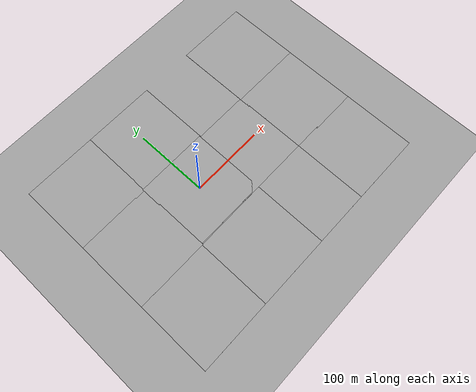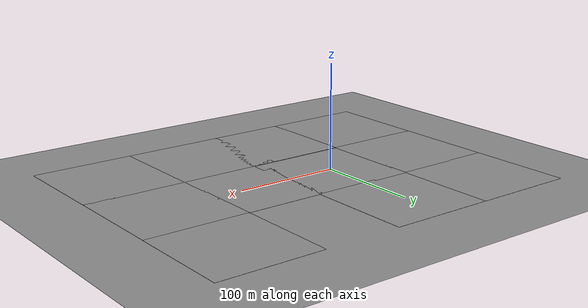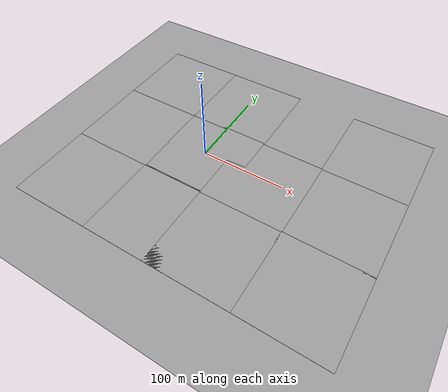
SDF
<sdf version="1.7">
 <world name="default">
  <scene>
   <grid>0</grid>
   <origin_visual>0</origin_visual>
   <ambient>0.85 0.85 0.85 1</ambient>
   <sky><clouds><speed>12</speed></clouds></sky>
   <background>0.35 0.35 0.35 1</background>
   <shadows>1</shadows>
  </scene>
  <physics name="default_physics" default="0" type="ode">
   <max_step_size>0.005</max_step_size>
   <real_time_factor>1</real_time_factor>
   <real_time_update_rate>200</real_time_update_rate>
  </physics>
  <light name="sun" type="directional">
   <pose>0 0 1000 0 -0 0</pose>
   <diffuse>0.8 0.8 0.8 1</diffuse>
   <specular>0.5 0.5 0.5 1</specular>
   <attenuation>
    <range>1000</range>
    <constant>0.9</constant>
    <linear>0.01</linear>
    <quadratic>0.001</quadratic>
   </attenuation>
   <direction>-0.5 0.1 -0.4</direction>
   <spot><inner_angle>0</inner_angle><outer_angle>0</outer_angle><falloff>0</falloff></spot>
  </light>
  <model name="ground_plane">
   <static>1</static>
   <link name="link">
    <collision name="collision">
     <geometry><plane><normal>0 0 1</normal><size>100 100</size></plane></geometry>
     <surface><friction><ode><mu>100</mu><mu2>50</mu2></ode></friction></surface>
    </collision>
   </link>
  </model>
  <model name="asphalt_plane_74">
   <static>1</static>
   <pose>61.581 -16.664 0 0 -0 0</pose>
   <link name="link">
    <visual name="visual">
     <geometry><box><size>20 20 0.05</size></box></geometry>
     <material>
      <script>
       <uri>model://asphalt_plane/materials/scripts</uri>
       <uri>model://asphalt_plane/materials/textures</uri>
       <name>vrc/asphalt</name>
      </script>
     </material>
    </visual>
   </link>
  </model>
  <gravity>0 0 -9.8</gravity>
  <magnetic_field>6e-06 2.3e-05 -4.2e-05</magnetic_field>
  <atmosphere type="adiabatic"/>
  <spherical_coordinates>
   <surface_model>EARTH_WGS84</surface_model>
   <latitude_deg>0</latitude_deg>
   <longitude_deg>0</longitude_deg>
   <elevation>0</elevation>
   <heading_deg>0</heading_deg>
  </spherical_coordinates>
  <model name="ground_plane_0">
   <static>1</static>
   <link name="link">
    <collision name="collision">
     <geometry><plane><normal>0 0 1</normal><size>100 100</size></plane></geometry>
     <surface>
      <contact><collide_bitmask>65535</collide_bitmask></contact>
      <friction><ode><mu>100</mu><mu2>50</mu2></ode></friction>
     </surface>
    </collision>
    <visual name="visual">
     <cast_shadows>0</cast_shadows>
     <geometry><plane><normal>0 0 1</normal><size>100 100</size></plane></geometry>
     <material>
      <script><uri>file://media/materials/scripts/gazebo.material</uri><name>Gazebo/Grey</name></script>
     </material>
    </visual>
   </link>
   <pose>76.7051 97.662 0 0 -0 0</pose>
  </model>
  <model name="ground_plane_1">
   <static>1</static>
   <link name="link">
    <collision name="collision">
     <geometry><plane><normal>0 0 1</normal><size>100 100</size></plane></geometry>
     <surface>
      <contact><collide_bitmask>65535</collide_bitmask></contact>
      <friction><ode><mu>100</mu><mu2>50</mu2></ode></friction>
     </surface>
    </collision>
    <visual name="visual">
     <cast_shadows>0</cast_shadows>
     <geometry><plane><normal>0 0 1</normal><size>100 100</size></plane></geometry>
     <material>
      <script><uri>file://media/materials/scripts/gazebo.material</uri><name>Gazebo/Grey</name></script>
     </material>
    </visual>
   </link>
   <pose>1.47928 97.673 0 0 -0 0</pose>
  </model>
  <model name="ground_plane_2">
   <static>1</static>
   <link name="link">
    <collision name="collision">
     <geometry><plane><normal>0 0 1</normal><size>100 100</size></plane></geometry>
     <surface>
      <contact><collide_bitmask>65535</collide_bitmask></contact>
      <friction><ode><mu>100</mu><mu2>50</mu2></ode></friction>
     </surface>
    </collision>
    <visual name="visual">
     <cast_shadows>0</cast_shadows>
     <geometry><plane><normal>0 0 1</normal><size>100 100</size></plane></geometry>
     <material>
      <script><uri>file://media/materials/scripts/gazebo.material</uri><name>Gazebo/Grey</name></script>
     </material>
    </visual>
   </link>
   <pose>76.687 -1.43461 0 0 -0 0</pose>
  </model>
  <model name="ground_plane_3">
   <static>1</static>
   <link name="link">
    <collision name="collision">
     <geometry><plane><normal>0 0 1</normal><size>100 100</size></plane></geometry>
     <surface>
      <contact><collide_bitmask>65535</collide_bitmask></contact>
      <friction><ode><mu>100</mu><mu2>50</mu2></ode></friction>
     </surface>
    </collision>
    <visual name="visual">
     <cast_shadows>0</cast_shadows>
     <geometry><plane><normal>0 0 1</normal><size>100 100</size></plane></geometry>
     <material>
      <script><uri>file://media/materials/scripts/gazebo.material</uri><name>Gazebo/Grey</name></script>
     </material>
    </visual>
   </link>
   <pose>0.752401 0.14058 0 0 -0 0</pose>
  </model>
  <model name="ground_plane_4">
   <static>1</static>
   <link name="link">
    <collision name="collision">
     <geometry><plane><normal>0 0 1</normal><size>100 100</size></plane></geometry>
     <surface>
      <contact><collide_bitmask>65535</collide_bitmask></contact>
      <friction><ode><mu>100</mu><mu2>50</mu2></ode></friction>
     </surface>
    </collision>
    <visual name="visual">
     <cast_shadows>0</cast_shadows>
     <geometry><plane><normal>0 0 1</normal><size>100 100</size></plane></geometry>
     <material>
      <script><uri>file://media/materials/scripts/gazebo.material</uri><name>Gazebo/Grey</name></script>
     </material>
    </visual>
   </link>
   <pose>76.7622 -100.816 0 0 -0 0</pose>
  </model>
  <model name="ground_plane_5">
   <static>1</static>
   <link name="link">
    <collision name="collision">
     <geometry><plane><normal>0 0 1</normal><size>100 100</size></plane></geometry>
     <surface>
      <contact><collide_bitmask>65535</collide_bitmask></contact>
      <friction><ode><mu>100</mu><mu2>50</mu2></ode></friction>
     </surface>
    </collision>
    <visual name="visual">
     <cast_shadows>0</cast_shadows>
     <geometry><plane><normal>0 0 1</normal><size>100 100</size></plane></geometry>
     <material>
      <script><uri>file://media/materials/scripts/gazebo.material</uri><name>Gazebo/Grey</name></script>
     </material>
    </visual>
   </link>
   <pose>0.776733 -100.921 0 0 -0 0</pose>
  </model>
  <model name="ground_plane_6">
   <static>1</static>
   <link name="link">
    <collision name="collision">
     <geometry><plane><normal>0 0 1</normal><size>100 100</size></plane></geometry>
     <surface>
      <contact><collide_bitmask>65535</collide_bitmask></contact>
      <friction><ode><mu>100</mu><mu2>50</mu2></ode></friction>
     </surface>
    </collision>
    <visual name="visual">
     <cast_shadows>0</cast_shadows>
     <geometry><plane><normal>0 0 1</normal><size>100 100</size></plane></geometry>
     <material>
      <script><uri>file://media/materials/scripts/gazebo.material</uri><name>Gazebo/Grey</name></script>
     </material>
    </visual>
   </link>
   <pose>175.67 -100.799 0 0 -0 0</pose>
  </model>
  <model name="ground_plane_7">
   <static>1</static>
   <link name="link">
    <collision name="collision">
     <geometry><plane><normal>0 0 1</normal><size>100 100</size></plane></geometry>
     <surface>
      <contact><collide_bitmask>65535</collide_bitmask></contact>
      <friction><ode><mu>100</mu><mu2>50</mu2></ode></friction>
     </surface>
    </collision>
    <visual name="visual">
     <cast_shadows>0</cast_shadows>
     <geometry><plane><normal>0 0 1</normal><size>100 100</size></plane></geometry>
     <material>
      <script><uri>file://media/materials/scripts/gazebo.material</uri><name>Gazebo/Grey</name></script>
     </material>
    </visual>
   </link>
   <pose>175.574 -2.13488 0 0 -0 0</pose>
  </model>
  <model name="ground_plane_8">
   <static>1</static>
   <link name="link">
    <collision name="collision">
     <geometry><plane><normal>0 0 1</normal><size>100 100</size></plane></geometry>
     <surface>
      <contact><collide_bitmask>65535</collide_bitmask></contact>
      <friction><ode><mu>100</mu><mu2>50</mu2></ode></friction>
     </surface>
    </collision>
    <visual name="visual">
     <cast_shadows>0</cast_shadows>
     <geometry><plane><normal>0 0 1</normal><size>100 100</size></plane></geometry>
     <material>
      <script><uri>file://media/materials/scripts/gazebo.material</uri><name>Gazebo/Grey</name></script>
     </material>
    </visual>
   </link>
   <pose>175.713 97.6973 0 0 -0 0</pose>
  </model>
  <model name="ground_plane_9">
   <static>1</static>
   <link name="link">
    <collision name="collision">
     <geometry><plane><normal>0 0 1</normal><size>100 100</size></plane></geometry>
     <surface>
      <contact><collide_bitmask>65535</collide_bitmask></contact>
      <friction><ode><mu>100</mu><mu2>50</mu2></ode></friction>
     </surface>
    </collision>
    <visual name="visual">
     <cast_shadows>0</cast_shadows>
     <geometry><plane><normal>0 0 1</normal><size>100 100</size></plane></geometry>
     <material>
      <script><uri>file://media/materials/scripts/gazebo.material</uri><name>Gazebo/Grey</name></script>
     </material>
    </visual>
   </link>
   <pose>-97.9882 97.7152 0 0 -0 0</pose>
  </model>
  <model name="ground_plane_10">
   <static>1</static>
   <link name="link">
    <collision name="collision">
     <geometry><plane><normal>0 0 1</normal><size>100 100</size></plane></geometry>
     <surface>
      <contact><collide_bitmask>65535</collide_bitmask></contact>
      <friction><ode><mu>100</mu><mu2>50</mu2></ode></friction>
     </surface>
    </collision>
    <visual name="visual">
     <cast_shadows>0</cast_shadows>
     <geometry><plane><normal>0 0 1</normal><size>100 100</size></plane></geometry>
     <material>
      <script><uri>file://media/materials/scripts/gazebo.material</uri><name>Gazebo/Grey</name></script>
     </material>
    </visual>
   </link>
   <pose>-97.9833 -1.26382 0 0 -0 0</pose>
  </model>
  <model name="ground_plane_11">
   <static>1</static>
   <link name="link">
    <collision name="collision">
     <geometry><plane><normal>0 0 1</normal><size>100 100</size></plane></geometry>
     <surface>
      <contact><collide_bitmask>65535</collide_bitmask></contact>
      <friction><ode><mu>100</mu><mu2>50</mu2></ode></friction>
     </surface>
    </collision>
    <visual name="visual">
     <cast_shadows>0</cast_shadows>
     <geometry><plane><normal>0 0 1</normal><size>100 100</size></plane></geometry>
     <material>
      <script><uri>file://media/materials/scripts/gazebo.material</uri><name>Gazebo/Grey</name></script>
     </material>
    </visual>
   </link>
   <pose>-97.9639 -100.864 0 0 -0 0</pose>
  </model>
  <model name="trisphere_cycle">
   <link name="frame">
    <pose>-0.408559 0 0.385023 0 -0.522021 0</pose>
    <inertial>
     <mass>10</mass>
     <inertia><ixx>0.228</ixx><iyy>0.743521</iyy><izz>0.965521</izz><ixy>0</ixy><ixz>0</ixz><iyz>0</iyz></inertia>
    </inertial>
    <collision name="axle_collision">
     <pose>-0.471335 0 0 1.5708 -0 0</pose>
     <geometry><cylinder><length>1.03923</length><radius>0.03</radius></cylinder></geometry>
    </collision>
    <visual name="axle_visual">
     <pose>-0.471335 0 0 1.5708 -0 0</pose>
     <geometry><cylinder><length>1.03923</length><radius>0.03</radius></cylinder></geometry>
     <material>
      <script><uri>file://media/materials/scripts/gazebo.material</uri><name>Gazebo/Grey</name></script>
     </material>
    </visual>
    <collision name="frame_left_collision">
     <pose>0 0.171552 0 -2.79253 1.57079 3.14159</pose>
     <geometry><cylinder><length>1.00317</length><radius>0.03</radius></cylinder></geometry>
    </collision>
    <visual name="frame_left_visual">
     <pose>0 0.171552 0 -2.79253 1.57079 3.14159</pose>
     <geometry><cylinder><length>1.00317</length><radius>0.03</radius></cylinder></geometry>
     <material>
      <script><uri>file://media/materials/scripts/gazebo.material</uri><name>Gazebo/Grey</name></script>
     </material>
    </visual>
    <collision name="frame_right_collision">
     <pose>0 -0.171552 0 2.79253 1.57079 -3.14159</pose>
     <geometry><cylinder><length>1.00317</length><radius>0.03</radius></cylinder></geometry>
    </collision>
    <visual name="frame_right_visual">
     <pose>0 -0.171552 0 2.79253 1.57079 -3.14159</pose>
     <geometry><cylinder><length>1.00317</length><radius>0.03</radius></cylinder></geometry>
     <material>
      <script><uri>file://media/materials/scripts/gazebo.material</uri><name>Gazebo/Grey</name></script>
     </material>
    </visual>
   </link>
   <link name="fork">
    <pose>0.041441 0 0.385023 0 -0.174533 0</pose>
    <inertial>
     <mass>3</mass>
     <inertia>
      <ixx>0.158203</ixx>
      <iyy>0.0583594</iyy>
      <izz>0.102656</izz>
      <ixy>0</ixy>
      <ixz>0</ixz>
      <iyz>0</iyz>
     </inertia>
    </inertial>
    <collision name="handlebars_collision">
     <pose>0 0 0.397748 1.5708 -0 0</pose>
     <geometry><cylinder><length>0.636396</length><radius>0.0375</radius></cylinder></geometry>
    </collision>
    <visual name="handlebars_visual">
     <pose>0 0 0.397748 1.5708 -0 0</pose>
     <geometry><cylinder><length>0.636396</length><radius>0.0375</radius></cylinder></geometry>
     <material>
      <script><uri>file://media/materials/scripts/gazebo.material</uri><name>Gazebo/Grey</name></script>
     </material>
    </visual>
    <collision name="headtube_collision">
     <pose>0 0 0.238649 0 -0 0</pose>
     <geometry><cylinder><length>0.318198</length><radius>0.0375</radius></cylinder></geometry>
    </collision>
    <visual name="headtube_visual">
     <pose>0 0 0.238649 0 -0 0</pose>
     <geometry><cylinder><length>0.318198</length><radius>0.0375</radius></cylinder></geometry>
     <material>
      <script><uri>file://media/materials/scripts/gazebo.material</uri><name>Gazebo/Grey</name></script>
     </material>
    </visual>
    <collision name="spindle_collision">
     <pose>0 0 -0.238649 1.5708 -0 0</pose>
     <geometry><cylinder><length>0.636396</length><radius>0.015</radius></cylinder></geometry>
    </collision>
    <visual name="spindle_visual">
     <pose>0 0 -0.238649 1.5708 -0 0</pose>
     <geometry><cylinder><length>0.636396</length><radius>0.015</radius></cylinder></geometry>
     <material>
      <script><uri>file://media/materials/scripts/gazebo.material</uri><name>Gazebo/Grey</name></script>
     </material>
    </visual>
    <collision name="fork_left_collision">
     <pose>0 0.159099 -0.07955 0.785398 -0 0</pose>
     <geometry><cylinder><length>0.45</length><radius>0.0375</radius></cylinder></geometry>
    </collision>
    <visual name="fork_left_visual">
     <pose>0 0.159099 -0.07955 0.785398 -0 0</pose>
     <geometry><cylinder><length>0.45</length><radius>0.0375</radius></cylinder></geometry>
     <material>
      <script><uri>file://media/materials/scripts/gazebo.material</uri><name>Gazebo/Grey</name></script>
     </material>
    </visual>
    <collision name="fork_right_collision">
     <pose>0 -0.159099 -0.07955 -0.785398 0 0</pose>
     <geometry><cylinder><length>0.45</length><radius>0.0375</radius></cylinder></geometry>
    </collision>
    <visual name="fork_right_visual">
     <pose>0 -0.159099 -0.07955 -0.785398 0 0</pose>
     <geometry><cylinder><length>0.45</length><radius>0.0375</radius></cylinder></geometry>
     <material>
      <script><uri>file://media/materials/scripts/gazebo.material</uri><name>Gazebo/Grey</name></script>
     </material>
    </visual>
   </link>
   <link name="wheel_front">
    <pose>0.082882 0 0.15 0 -0 0</pose>
    <inertial>
     <mass>0.5</mass>
     <inertia><ixx>0.0045</ixx><iyy>0.0045</iyy><izz>0.0045</izz><ixy>0</ixy><ixz>0</ixz><iyz>0</iyz></inertia>
    </inertial>
    <collision name="collision">
     <geometry><sphere><radius>0.15</radius></sphere></geometry>
     <surface><contact><ode><kp>1e+08</kp><kd>1</kd><min_depth>0.0005</min_depth></ode></contact></surface>
    </collision>
    <visual name="visual">
     <geometry><sphere><radius>0.15</radius></sphere></geometry>
     <material>
      <script><uri>file://media/materials/scripts/gazebo.material</uri><name>Gazebo/Black</name></script>
     </material>
    </visual>
   </link>
   <joint name="wheel_front_steer" type="revolute">
    <parent>frame</parent>
    <child>fork</child>
    <axis>
     <xyz>0 0 1</xyz>
     <limit><lower>-0.959931</lower><upper>0.959931</upper></limit>
     <dynamics><spring_reference>0</spring_reference><spring_stiffness>0</spring_stiffness></dynamics>
    </axis>
   </joint>
   <joint name="wheel_front_spin" type="revolute">
    <parent>fork</parent>
    <child>wheel_front</child>
    <axis>
     <xyz>0 1 0</xyz>
     <limit><lower>-1e+16</lower><upper>1e+16</upper></limit>
     <dynamics><spring_reference>0</spring_reference><spring_stiffness>0</spring_stiffness></dynamics>
    </axis>
   </joint>
   <link name="wheel_rear_left">
    <pose>-0.817118 0.519615 0.15 0 -0 0</pose>
    <inertial>
     <mass>0.5</mass>
     <inertia><ixx>0.0045</ixx><iyy>0.0045</iyy><izz>0.0045</izz><ixy>0</ixy><ixz>0</ixz><iyz>0</iyz></inertia>
    </inertial>
    <collision name="collision">
     <geometry><sphere><radius>0.15</radius></sphere></geometry>
     <surface><contact><ode><kp>1e+08</kp><kd>1</kd><min_depth>0.0005</min_depth></ode></contact></surface>
    </collision>
    <visual name="visual">
     <geometry><sphere><radius>0.15</radius></sphere></geometry>
     <material>
      <script><uri>file://media/materials/scripts/gazebo.material</uri><name>Gazebo/Black</name></script>
     </material>
    </visual>
   </link>
   <joint name="wheel_rear_left_spin" type="revolute">
    <parent>frame</parent>
    <child>wheel_rear_left</child>
    <axis>
     <xyz>0 1 0</xyz>
     <limit><lower>-1e+16</lower><upper>1e+16</upper></limit>
     <dynamics><spring_reference>0</spring_reference><spring_stiffness>0</spring_stiffness></dynamics>
    </axis>
   </joint>
   <link name="wheel_rear_right">
    <pose>-0.817118 -0.519615 0.15 0 -0 0</pose>
    <inertial>
     <mass>0.5</mass>
     <inertia><ixx>0.0045</ixx><iyy>0.0045</iyy><izz>0.0045</izz><ixy>0</ixy><ixz>0</ixz><iyz>0</iyz></inertia>
    </inertial>
    <collision name="collision">
     <geometry><sphere><radius>0.15</radius></sphere></geometry>
     <surface><contact><ode><kp>1e+08</kp><kd>1</kd><min_depth>0.0005</min_depth></ode></contact></surface>
    </collision>
    <visual name="visual">
     <geometry><sphere><radius>0.15</radius></sphere></geometry>
     <material>
      <script><uri>file://media/materials/scripts/gazebo.material</uri><name>Gazebo/Black</name></script>
     </material>
    </visual>
   </link>
   <joint name="wheel_rear_right_spin" type="revolute">
    <parent>frame</parent>
    <child>wheel_rear_right</child>
    <axis>
     <xyz>0 1 0</xyz>
     <limit><lower>-1e+16</lower><upper>1e+16</upper></limit>
     <dynamics><spring_reference>0</spring_reference><spring_stiffness>0</spring_stiffness></dynamics>
    </axis>
   </joint>
   <pose>128.049 5.14995 -0.000112 -0.000254 -2.9e-05 -0.062732</pose>
  </model>
 </world>
</sdf>
